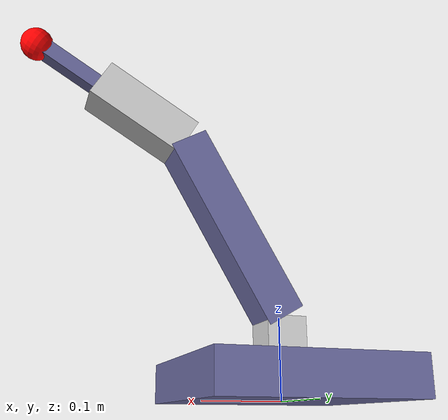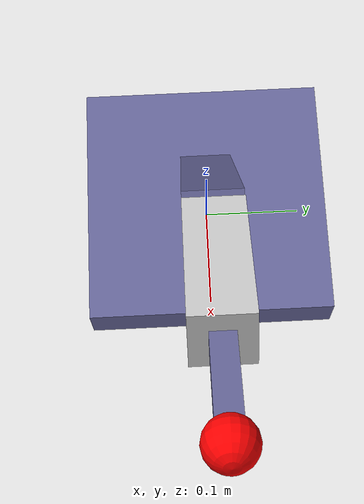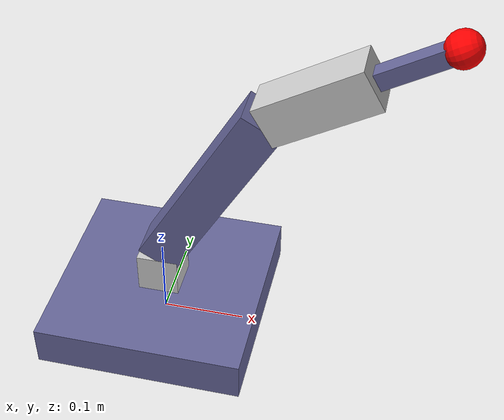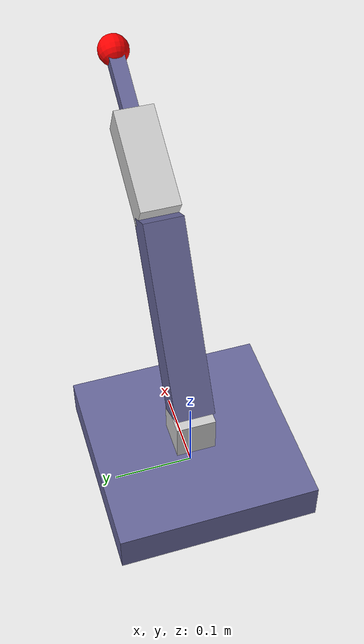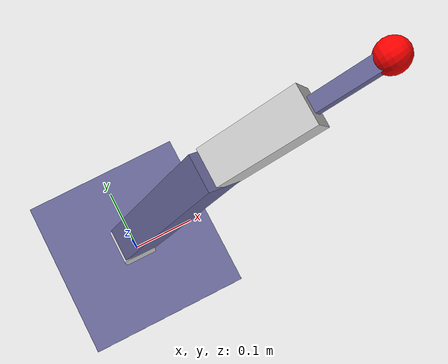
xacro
<robot name="rc_backhoe" xmlns:xacro="http://ros.org/wiki/xacro">
  <xacro:arg name="robot_name" default="/rc_backhoe" />
  <xacro:property name="robot_name" value="$(arg robot_name)" />

  <material name="red">
    <color rgba="1.0 0.0 0.0 1.0"/>
  </material>
  <material name="gray">
    <color rgba="0.4 0.4 0.6 1.0"/>
  </material>
  <material name="light_gray">
    <color rgba="0.8 0.8 0.8 1.0"/>
  </material>

  <xacro:macro name="arm4d_macro" params="l1 l2 l3 l4 l5">
    <link name="base_link"/>

    <joint name="body_joint" type="fixed">
      <parent link="base_link"/>
      <child link="body_link"/>
    </joint>
    <link name="body_link">
      <visual>
        <origin rpy="0 0 0" xyz="0 0 ${l1/2}"/>
        <geometry>
          <box size="0.25 0.25 ${l1}"/>
        </geometry>
        <material name="gray"/>
      </visual>
      <collision>
        <origin rpy="0 0 0" xyz="0 0 ${l1/2}"/>
        <geometry>
          <box size="0.25 0.25 ${l1}"/>
        </geometry>
      </collision>
      <inertial>
        <origin rpy="0 0 0" xyz="0 0 ${l1/2}"/>
        <mass value="50"/>
        <inertia ixx="10.0" ixy="0.0" ixz="0.0" iyy="10.0" iyz="0.0" izz="10.0"/>
      </inertial>
    </link>

    <joint name="swing_joint" type="revolute">
      <parent link="body_link"/>
      <child link="swing_link"/>
      <origin rpy="0 0 0" xyz="0 0 ${l1}"/>
      <axis xyz="0 0 1"/>
      <limit effort="30" lower="${radians(-180)}" upper="${radians(180)}" velocity="0.5"/>
      <dynamics damping="1.0" friction="20.0" />
    </joint>
    <link name="swing_link">
      <visual>
        <origin rpy="0 0 0" xyz="0 0 ${l2/2}"/>
        <geometry>
          <box size="0.05 0.05 ${l2}"/>
        </geometry>
        <material name="light_gray"/>
      </visual>
      <collision>
        <origin rpy="0 0 0" xyz="0 0 ${l2/2}"/>
        <geometry>
          <box size="0.05 0.05 ${l2}"/>
        </geometry>
      </collision>
      <inertial>
        <origin rpy="0 0 0" xyz="0 0 ${l2/2}"/>
        <mass value="0.3"/>
        <inertia ixx="1.0" ixy="0.0" ixz="0.0" iyy="1.0" iyz="0.0" izz="1.0"/>
      </inertial>
    </link>

    <joint name="boom_joint" type="revolute">
      <parent link="swing_link"/>
      <child link="boom_link"/>
      <origin rpy="0 ${radians(30)} 0" xyz="0 0 ${l2}"/>
      <axis xyz="0 1 0"/>
      <limit effort="30" lower="${radians(0)}" upper="${radians(90)}" velocity="0.5"/>
      <dynamics damping="1.0" friction="20.0" />
    </joint>
    <link name="boom_link">
      <visual>
        <origin rpy="0 0 0" xyz="0 0 ${l3/2}"/>
        <geometry>
          <box size="0.05 0.05 ${l3}"/>
        </geometry>
        <material name="gray"/>
      </visual>
      <collision>
        <origin rpy="0 0 0" xyz="0 0 ${l3/2}"/>
        <geometry>
          <box size="0.05 0.05 ${l3}"/>
        </geometry>
      </collision>
      <inertial>
        <origin rpy="0 0 0" xyz="0 0 ${l3/2}"/>
        <mass value="0.3"/>
        <inertia ixx="1.0" ixy="0.0" ixz="0.0" iyy="1.0" iyz="0.0" izz="1.0"/>
      </inertial>
    </link>

    <joint name="arm_joint" type="revolute">
      <parent link="boom_link"/>
      <child link="arm_link"/>
      <origin rpy="0 ${radians(30)} 0" xyz="0 0 ${l3}"/>
      <axis xyz="0 1 0"/>
      <limit effort="30" lower="${radians(0)}" upper="${radians(90)}" velocity="0.5"/>
      <dynamics damping="1.0" friction="20.0" />
    </joint>
    <link name="arm_link">
      <visual>
        <origin rpy="0 0 0" xyz="0 0 ${l4/2}"/>
        <geometry>
          <box size="0.05 0.05 ${l4}"/>
        </geometry>
        <material name="light_gray"/>
      </visual>
      <collision>
        <origin rpy="0 0 0" xyz="0 0 ${l4/2}"/>
        <geometry>
          <box size="0.05 0.05 ${l4}"/>
        </geometry>
      </collision>
      <inertial>
        <origin rpy="0 0 0" xyz="0 0 ${l4/2}"/>
        <mass value="0.3"/>
        <inertia ixx="1.0" ixy="0.0" ixz="0.0" iyy="1.0" iyz="0.0" izz="1.0"/>
      </inertial>
    </link>

    <joint name="bucket_joint" type="revolute">
      <parent link="arm_link"/>
      <child link="bucket_link"/>
      <origin rpy="0 ${radians(0)} 0" xyz="0 0 ${l4}"/>
      <axis xyz="0 1 0"/>
      <limit effort="30" lower="${radians(0)}" upper="${radians(90)}" velocity="0.5"/>
      <dynamics damping="1.0" friction="20.0" />
    </joint>
    <link name="bucket_link">
      <visual>
        <origin rpy="0 0 0" xyz="0 0 ${l5/2}"/>
        <geometry>
          <box size="0.02 0.02 ${l5}"/>
        </geometry>
        <material name="gray"/>
      </visual>
      <collision>
        <origin rpy="0 0 0" xyz="0 0 ${l5/2}"/>
        <geometry>
          <box size="0.02 0.02 ${l5}"/>
        </geometry>
      </collision>
      <inertial>
        <origin rpy="0 0 0" xyz="0 0 ${l5/2}"/>
        <mass value="0.3"/>
        <inertia ixx="1.0" ixy="0.0" ixz="0.0" iyy="1.0" iyz="0.0" izz="1.0"/>
      </inertial>
    </link>

    <joint name="target_joint" type="fixed">
      <parent link="bucket_link"/>
      <child link="target_link"/>
      <origin rpy="0 0 0" xyz="0 0 ${l5}"/>
    </joint>
    <link name="target_link">
      <visual>
        <geometry>
          <sphere radius="0.02"/>
        </geometry>
        <material name="red"/>
      </visual>
      <collision>
        <geometry>
          <sphere radius="0.02"/>
        </geometry>
      </collision>
      <inertial>
        <mass value="0.3"/>
        <inertia ixx="1.0" ixy="0.0" ixz="0.0" iyy="1.0" iyz="0.0" izz="1.0"/>
      </inertial>
    </link>

    <transmission name="swing_trans">
      <type>transmission_interface/SimpleTransmission</type>
        <joint name="swing_joint">
        <hardwareInterface>hardware_interface/PositionJointInterface</hardwareInterface>
      </joint>
      <actuator name="swing_motor">
        <hardwareInterface>hardware_interface/PositionJointInterface</hardwareInterface>
        <mechanicalReduction>1</mechanicalReduction>
      </actuator>
    </transmission>
    <transmission name="boom_trans">
      <type>transmission_interface/SimpleTransmission</type>
        <joint name="boom_joint">
        <hardwareInterface>hardware_interface/PositionJointInterface</hardwareInterface>
      </joint>
      <actuator name="boom_motor">
        <hardwareInterface>hardware_interface/PositionJointInterface</hardwareInterface>
        <mechanicalReduction>1</mechanicalReduction>
      </actuator>
    </transmission>
    <transmission name="arm_trans">
      <type>transmission_interface/SimpleTransmission</type>
        <joint name="arm_joint">
        <hardwareInterface>hardware_interface/PositionJointInterface</hardwareInterface>
      </joint>
      <actuator name="arm_motor">
        <hardwareInterface>hardware_interface/PositionJointInterface</hardwareInterface>
        <mechanicalReduction>1</mechanicalReduction>
      </actuator>
    </transmission>
    <transmission name="bucket_trans">
      <type>transmission_interface/SimpleTransmission</type>
        <joint name="bucket_joint">
        <hardwareInterface>hardware_interface/PositionJointInterface</hardwareInterface>
      </joint>
      <actuator name="bucket_motor">
        <hardwareInterface>hardware_interface/PositionJointInterface</hardwareInterface>
        <mechanicalReduction>1</mechanicalReduction>
      </actuator>
    </transmission>
    <gazebo>
      <plugin name="rc_backhoe_retrofit_model" filename="librc_backhoe_retrofit_model.so">
      </plugin>
    </gazebo>

    <link name="swing_imu_link" />
    <joint name="swing_imu_joint" type="fixed">
      <parent link="swing_link" />
      <child link="swing_imu_link" />
      <origin rpy="0 0 0" xyz="0 0 0"/>
    </joint>
    <gazebo reference="swing_imu_link">
    <gravity>true</gravity>
    <sensor name="swing_imu_sensor" type="imu">
      <always_on>true</always_on>
      <update_rate>100</update_rate>
      <visualize>true</visualize>
      <topic>__default_topic__</topic>
      <plugin filename="libgazebo_ros_imu_sensor.so" name="imu_plugin">
        <topicName>${robot_name}/swing/imu/data_raw</topicName>
        <bodyName>swing_imu_link</bodyName>
        <updateRateHZ>10.0</updateRateHZ>
        <gaussianNoise>0.0</gaussianNoise>
        <xyzOffset>0 0 0</xyzOffset>
        <rpyOffset>0 0 0</rpyOffset>
        <frameName>swing_imu_link</frameName>
        <initialOrientationAsReference>false</initialOrientationAsReference>
      </plugin>
      <pose>0 0 0 0 0 0</pose>
    </sensor>
    </gazebo>

    <link name="boom_imu_link" />
    <joint name="boom_imu_joint" type="fixed">
      <parent link="boom_link" />
      <child link="boom_imu_link" />
      <origin rpy="${radians(-90)} ${radians(20)} 0" xyz="0 0 ${l3/2}"/>
    </joint>
    <gazebo reference="boom_imu_link">
    <gravity>true</gravity>
    <sensor name="boom_imu_sensor" type="imu">
      <always_on>true</always_on>
      <update_rate>100</update_rate>
      <visualize>true</visualize>
      <topic>__default_topic__</topic>
      <plugin filename="libgazebo_ros_imu_sensor.so" name="imu_plugin">
        <topicName>${robot_name}/boom/imu/data_raw</topicName>
        <bodyName>boom_imu_link</bodyName>
        <updateRateHZ>10.0</updateRateHZ>
        <gaussianNoise>0.0</gaussianNoise>
        <xyzOffset>0 0 0</xyzOffset>
        <rpyOffset>0 0 0</rpyOffset>
        <frameName>boom_imu_link</frameName>
        <initialOrientationAsReference>false</initialOrientationAsReference>
      </plugin>
      <pose>0 0 0 0 0 0</pose>
    </sensor>
    </gazebo>

    <link name="arm_imu_link" />
    <joint name="arm_imu_joint" type="fixed">
      <parent link="arm_link" />
      <child link="arm_imu_link" />
      <origin rpy="${radians(-90)} ${radians(-71)} 0" xyz="0 0 ${l4/2}"/>
    </joint>
    <gazebo reference="arm_imu_link">
    <gravity>true</gravity>
    <sensor name="arm_imu_sensor" type="imu">
      <always_on>true</always_on>
      <update_rate>100</update_rate>
      <visualize>true</visualize>
      <topic>__default_topic__</topic>
      <plugin filename="libgazebo_ros_imu_sensor.so" name="imu_plugin">
        <topicName>${robot_name}/arm/imu/data_raw</topicName>
        <bodyName>arm_imu_link</bodyName>
        <updateRateHZ>10.0</updateRateHZ>
        <gaussianNoise>0.0</gaussianNoise>
        <xyzOffset>0 0 0</xyzOffset>
        <rpyOffset>0 0 0</rpyOffset>
        <frameName>arm_imu_link</frameName>
        <initialOrientationAsReference>false</initialOrientationAsReference>
      </plugin>
      <pose>0 0 0 0 0 0</pose>
    </sensor>
    </gazebo>

    <link name="bucket_imu_link" />
    <joint name="bucket_imu_joint" type="fixed">
      <parent link="bucket_link" />
      <child link="bucket_imu_link" />
      <origin rpy="${radians(-90)} ${radians(-80)} 0" xyz="0 0 ${l5/4}"/>
    </joint>
    <gazebo reference="bucket_imu_link">
    <gravity>true</gravity>
    <sensor name="bucket_imu_sensor" type="imu">
      <always_on>true</always_on>
      <update_rate>100</update_rate>
      <visualize>true</visualize>
      <topic>__default_topic__</topic>
      <plugin filename="libgazebo_ros_imu_sensor.so" name="imu_plugin">
        <topicName>${robot_name}/bucket/imu/data_raw</topicName>
        <bodyName>bucket_imu_link</bodyName>
        <updateRateHZ>10.0</updateRateHZ>
        <gaussianNoise>0.0</gaussianNoise>
        <xyzOffset>0 0 0</xyzOffset>
        <rpyOffset>0 0 0</rpyOffset>
        <frameName>bucket_imu_link</frameName>
        <initialOrientationAsReference>false</initialOrientationAsReference>
      </plugin>
      <pose>0 0 0 0 0 0</pose>
    </sensor>
    </gazebo>
  </xacro:macro>

  <xacro:arm4d_macro l1="0.05" l2="0.05" l3="0.25" l4="0.13" l5="0.09"/>
</robot>
